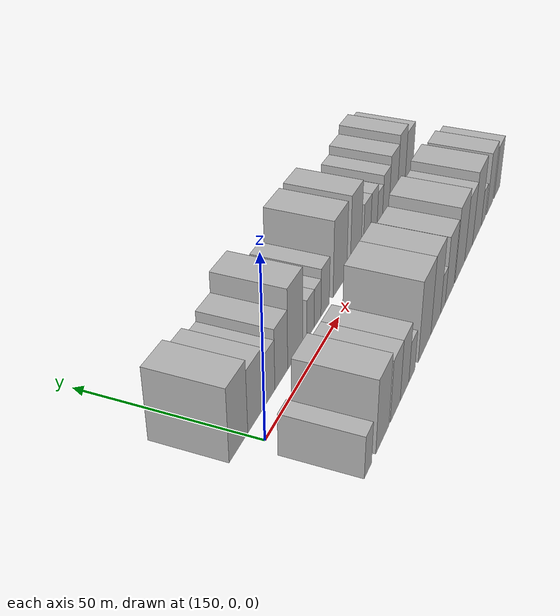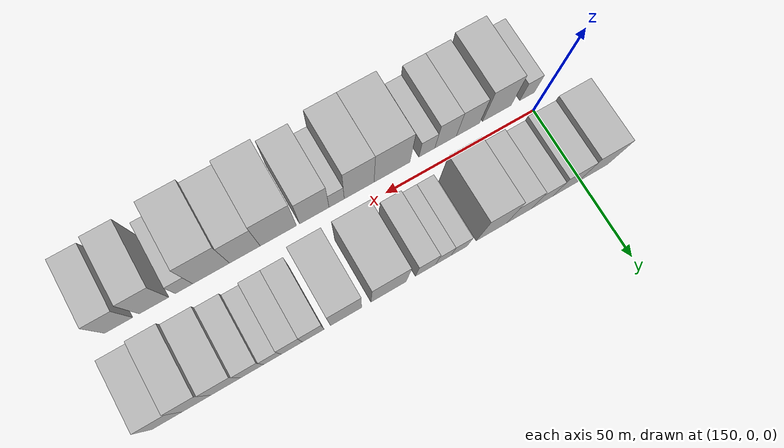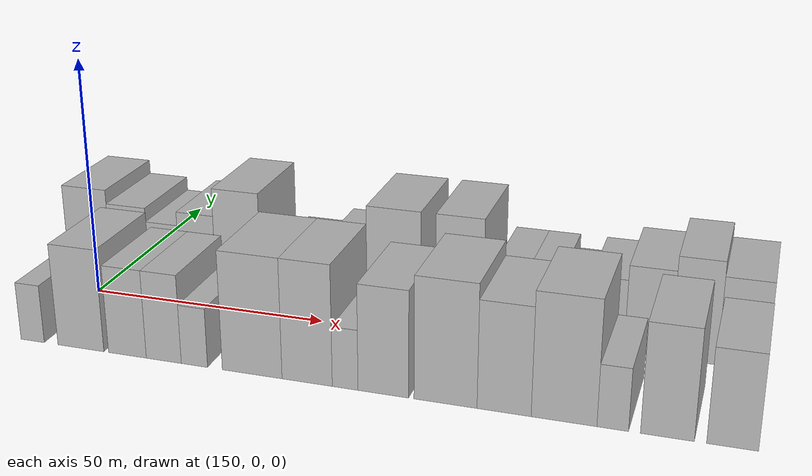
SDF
<sdf version="1.6">
 <world name="default">
  <model name="building_17">
   <static>1</static>
   <pose>145.6593 14.5000 0 0.000000 0.000000 1.570796</pose>
   <link name="link">
    <pose>0 0 10.50 0 0 0</pose>
    <collision name="collision"><geometry><box><size>20.0000 10.1548 21.0000</size></box></geometry></collision>
    <visual name="visual">
     <cast_shadows>0</cast_shadows>
     <geometry><box><size>20.0000 10.1548 21.0000</size></box></geometry>
     <material>
      <script>
       <uri>model://HANNAS_wall/materials/scripts</uri>
       <uri>model://HANNAS_wall/materials/textures</uri>
       <name>vrc/HANNAS_wall</name>
      </script>
     </material>
    </visual>
   </link>
  </model>
  <model name="building_18">
   <static>1</static>
   <pose>155.1751 14.5000 0 0.000000 0.000000 1.570796</pose>
   <link name="link">
    <pose>0 0 9.00 0 0 0</pose>
    <collision name="collision"><geometry><box><size>20.0000 8.8768 18.0000</size></box></geometry></collision>
    <visual name="visual">
     <cast_shadows>0</cast_shadows>
     <geometry><box><size>20.0000 8.8768 18.0000</size></box></geometry>
     <material>
      <script>
       <uri>model://HANNAS_wall/materials/scripts</uri>
       <uri>model://HANNAS_wall/materials/textures</uri>
       <name>vrc/HANNAS_wall</name>
      </script>
     </material>
    </visual>
   </link>
  </model>
  <model name="building_19">
   <static>1</static>
   <pose>163.1832 14.5000 0 0.000000 0.000000 1.570796</pose>
   <link name="link">
    <pose>0 0 7.50 0 0 0</pose>
    <collision name="collision"><geometry><box><size>20.0000 7.1393 15.0000</size></box></geometry></collision>
    <visual name="visual">
     <cast_shadows>0</cast_shadows>
     <geometry><box><size>20.0000 7.1393 15.0000</size></box></geometry>
     <material>
      <script>
       <uri>model://HANNAS_wall/materials/scripts</uri>
       <uri>model://HANNAS_wall/materials/textures</uri>
       <name>vrc/HANNAS_wall</name>
      </script>
     </material>
    </visual>
   </link>
  </model>
  <model name="building_20">
   <static>1</static>
   <pose>170.8533 14.5000 0 0.000000 0.000000 1.570796</pose>
   <link name="link">
    <pose>0 0 9.00 0 0 0</pose>
    <collision name="collision"><geometry><box><size>20.0000 8.2009 18.0000</size></box></geometry></collision>
    <visual name="visual">
     <cast_shadows>0</cast_shadows>
     <geometry><box><size>20.0000 8.2009 18.0000</size></box></geometry>
     <material>
      <script>
       <uri>model://HANNAS_wall/materials/scripts</uri>
       <uri>model://HANNAS_wall/materials/textures</uri>
       <name>vrc/HANNAS_wall</name>
      </script>
     </material>
    </visual>
   </link>
  </model>
  <model name="building_21">
   <static>1</static>
   <pose>180.0035 14.5000 0 0.000000 0.000000 1.570796</pose>
   <link name="link">
    <pose>0 0 12.00 0 0 0</pose>
    <collision name="collision"><geometry><box><size>20.0000 10.0996 24.0000</size></box></geometry></collision>
    <visual name="visual">
     <cast_shadows>0</cast_shadows>
     <geometry><box><size>20.0000 10.0996 24.0000</size></box></geometry>
     <material>
      <script>
       <uri>model://HANNAS_wall/materials/scripts</uri>
       <uri>model://HANNAS_wall/materials/textures</uri>
       <name>vrc/HANNAS_wall</name>
      </script>
     </material>
    </visual>
   </link>
  </model>
  <model name="building_22">
   <static>1</static>
   <pose>190.7245 14.5000 0 0.000000 0.000000 1.570796</pose>
   <link name="link">
    <pose>0 0 6.00 0 0 0</pose>
    <collision name="collision"><geometry><box><size>20.0000 5.3423 12.0000</size></box></geometry></collision>
    <visual name="visual">
     <cast_shadows>0</cast_shadows>
     <geometry><box><size>20.0000 5.3423 12.0000</size></box></geometry>
     <material>
      <script>
       <uri>model://HANNAS_wall/materials/scripts</uri>
       <uri>model://HANNAS_wall/materials/textures</uri>
       <name>vrc/HANNAS_wall</name>
      </script>
     </material>
    </visual>
   </link>
  </model>
  <model name="building_23">
   <static>1</static>
   <pose>195.9058 14.5000 0 0.000000 0.000000 1.570796</pose>
   <link name="link">
    <pose>0 0 6.00 0 0 0</pose>
    <collision name="collision"><geometry><box><size>20.0000 5.0203 12.0000</size></box></geometry></collision>
    <visual name="visual">
     <cast_shadows>0</cast_shadows>
     <geometry><box><size>20.0000 5.0203 12.0000</size></box></geometry>
     <material>
      <script>
       <uri>model://HANNAS_wall/materials/scripts</uri>
       <uri>model://HANNAS_wall/materials/textures</uri>
       <name>vrc/HANNAS_wall</name>
      </script>
     </material>
    </visual>
   </link>
  </model>
  <model name="building_24">
   <static>1</static>
   <pose>201.6565 14.5000 0 0.000000 0.000000 1.570796</pose>
   <link name="link">
    <pose>0 0 7.50 0 0 0</pose>
    <collision name="collision"><geometry><box><size>20.0000 6.4810 15.0000</size></box></geometry></collision>
    <visual name="visual">
     <cast_shadows>0</cast_shadows>
     <geometry><box><size>20.0000 6.4810 15.0000</size></box></geometry>
     <material>
      <script>
       <uri>model://HANNAS_wall/materials/scripts</uri>
       <uri>model://HANNAS_wall/materials/textures</uri>
       <name>vrc/HANNAS_wall</name>
      </script>
     </material>
    </visual>
   </link>
  </model>
  <model name="building_25">
   <static>1</static>
   <pose>213.5023 14.5000 0 0.000000 0.000000 1.570796</pose>
   <link name="link">
    <pose>0 0 12.00 0 0 0</pose>
    <collision name="collision"><geometry><box><size>20.0000 11.2107 24.0000</size></box></geometry></collision>
    <visual name="visual">
     <cast_shadows>0</cast_shadows>
     <geometry><box><size>20.0000 11.2107 24.0000</size></box></geometry>
     <material>
      <script>
       <uri>model://HANNAS_wall/materials/scripts</uri>
       <uri>model://HANNAS_wall/materials/textures</uri>
       <name>vrc/HANNAS_wall</name>
      </script>
     </material>
    </visual>
   </link>
  </model>
  <model name="building_26">
   <static>1</static>
   <pose>226.9615 14.5000 0 0.000000 0.000000 1.570796</pose>
   <link name="link">
    <pose>0 0 12.00 0 0 0</pose>
    <collision name="collision"><geometry><box><size>20.0000 9.7077 24.0000</size></box></geometry></collision>
    <visual name="visual">
     <cast_shadows>0</cast_shadows>
     <geometry><box><size>20.0000 9.7077 24.0000</size></box></geometry>
     <material>
      <script>
       <uri>model://HANNAS_wall/materials/scripts</uri>
       <uri>model://HANNAS_wall/materials/textures</uri>
       <name>vrc/HANNAS_wall</name>
      </script>
     </material>
    </visual>
   </link>
  </model>
  <model name="building_27">
   <static>1</static>
   <pose>237.1932 14.5000 0 0.000000 0.000000 1.570796</pose>
   <link name="link">
    <pose>0 0 7.50 0 0 0</pose>
    <collision name="collision"><geometry><box><size>20.0000 6.7558 15.0000</size></box></geometry></collision>
    <visual name="visual">
     <cast_shadows>0</cast_shadows>
     <geometry><box><size>20.0000 6.7558 15.0000</size></box></geometry>
     <material>
      <script>
       <uri>model://HANNAS_wall/materials/scripts</uri>
       <uri>model://HANNAS_wall/materials/textures</uri>
       <name>vrc/HANNAS_wall</name>
      </script>
     </material>
    </visual>
   </link>
  </model>
  <model name="building_28">
   <static>1</static>
   <pose>243.8081 14.5000 0 0.000000 0.000000 1.570796</pose>
   <link name="link">
    <pose>0 0 7.50 0 0 0</pose>
    <collision name="collision"><geometry><box><size>20.0000 6.4741 15.0000</size></box></geometry></collision>
    <visual name="visual">
     <cast_shadows>0</cast_shadows>
     <geometry><box><size>20.0000 6.4741 15.0000</size></box></geometry>
     <material>
      <script>
       <uri>model://HANNAS_wall/materials/scripts</uri>
       <uri>model://HANNAS_wall/materials/textures</uri>
       <name>vrc/HANNAS_wall</name>
      </script>
     </material>
    </visual>
   </link>
  </model>
  <model name="building_29">
   <static>1</static>
   <pose>249.7371 14.5000 0 0.000000 0.000000 1.570796</pose>
   <link name="link">
    <pose>0 0 6.00 0 0 0</pose>
    <collision name="collision"><geometry><box><size>20.0000 5.3839 12.0000</size></box></geometry></collision>
    <visual name="visual">
     <cast_shadows>0</cast_shadows>
     <geometry><box><size>20.0000 5.3839 12.0000</size></box></geometry>
     <material>
      <script>
       <uri>model://HANNAS_wall/materials/scripts</uri>
       <uri>model://HANNAS_wall/materials/textures</uri>
       <name>vrc/HANNAS_wall</name>
      </script>
     </material>
    </visual>
   </link>
  </model>
  <model name="building_30">
   <static>1</static>
   <pose>255.9594 14.5000 0 0.000000 0.000000 1.570796</pose>
   <link name="link">
    <pose>0 0 7.50 0 0 0</pose>
    <collision name="collision"><geometry><box><size>20.0000 7.0605 15.0000</size></box></geometry></collision>
    <visual name="visual">
     <cast_shadows>0</cast_shadows>
     <geometry><box><size>20.0000 7.0605 15.0000</size></box></geometry>
     <material>
      <script>
       <uri>model://HANNAS_wall/materials/scripts</uri>
       <uri>model://HANNAS_wall/materials/textures</uri>
       <name>vrc/HANNAS_wall</name>
      </script>
     </material>
    </visual>
   </link>
  </model>
  <model name="building_31">
   <static>1</static>
   <pose>263.9150 14.5000 0 0.000000 0.000000 1.570796</pose>
   <link name="link">
    <pose>0 0 9.00 0 0 0</pose>
    <collision name="collision"><geometry><box><size>20.0000 8.8508 18.0000</size></box></geometry></collision>
    <visual name="visual">
     <cast_shadows>0</cast_shadows>
     <geometry><box><size>20.0000 8.8508 18.0000</size></box></geometry>
     <material>
      <script>
       <uri>model://HANNAS_wall/materials/scripts</uri>
       <uri>model://HANNAS_wall/materials/textures</uri>
       <name>vrc/HANNAS_wall</name>
      </script>
     </material>
    </visual>
   </link>
  </model>
  <model name="building_32">
   <static>1</static>
   <pose>272.6241 14.5000 0 0.000000 0.000000 1.570796</pose>
   <link name="link">
    <pose>0 0 10.50 0 0 0</pose>
    <collision name="collision"><geometry><box><size>20.0000 8.5672 21.0000</size></box></geometry></collision>
    <visual name="visual">
     <cast_shadows>0</cast_shadows>
     <geometry><box><size>20.0000 8.5672 21.0000</size></box></geometry>
     <material>
      <script>
       <uri>model://HANNAS_wall/materials/scripts</uri>
       <uri>model://HANNAS_wall/materials/textures</uri>
       <name>vrc/HANNAS_wall</name>
      </script>
     </material>
    </visual>
   </link>
  </model>
  <model name="building_33">
   <static>1</static>
   <pose>281.3903 14.5000 0 0.000000 0.000000 1.570796</pose>
   <link name="link">
    <pose>0 0 9.00 0 0 0</pose>
    <collision name="collision"><geometry><box><size>20.0000 8.9652 18.0000</size></box></geometry></collision>
    <visual name="visual">
     <cast_shadows>0</cast_shadows>
     <geometry><box><size>20.0000 8.9652 18.0000</size></box></geometry>
     <material>
      <script>
       <uri>model://HANNAS_wall/materials/scripts</uri>
       <uri>model://HANNAS_wall/materials/textures</uri>
       <name>vrc/HANNAS_wall</name>
      </script>
     </material>
    </visual>
   </link>
  </model>
  <model name="building_48">
   <static>1</static>
   <pose>149.2443 -14.5000 0 0.000000 0.000000 1.570796</pose>
   <link name="link">
    <pose>0 0 6.00 0 0 0</pose>
    <collision name="collision"><geometry><box><size>20.0000 5.1128 12.0000</size></box></geometry></collision>
    <visual name="visual">
     <cast_shadows>0</cast_shadows>
     <geometry><box><size>20.0000 5.1128 12.0000</size></box></geometry>
     <material>
      <script>
       <uri>model://HANNAS_wall/materials/scripts</uri>
       <uri>model://HANNAS_wall/materials/textures</uri>
       <name>vrc/HANNAS_wall</name>
      </script>
     </material>
    </visual>
   </link>
  </model>
  <model name="building_49">
   <static>1</static>
   <pose>159.7428 -14.5000 0 0.000000 0.000000 1.570796</pose>
   <link name="link">
    <pose>0 0 10.50 0 0 0</pose>
    <collision name="collision"><geometry><box><size>20.0000 9.8843 21.0000</size></box></geometry></collision>
    <visual name="visual">
     <cast_shadows>0</cast_shadows>
     <geometry><box><size>20.0000 9.8843 21.0000</size></box></geometry>
     <material>
      <script>
       <uri>model://HANNAS_wall/materials/scripts</uri>
       <uri>model://HANNAS_wall/materials/textures</uri>
       <name>vrc/HANNAS_wall</name>
      </script>
     </material>
    </visual>
   </link>
  </model>
  <model name="building_50">
   <static>1</static>
   <pose>169.6677 -14.5000 0 0.000000 0.000000 1.570796</pose>
   <link name="link">
    <pose>0 0 9.00 0 0 0</pose>
    <collision name="collision"><geometry><box><size>20.0000 7.9654 18.0000</size></box></geometry></collision>
    <visual name="visual">
     <cast_shadows>0</cast_shadows>
     <geometry><box><size>20.0000 7.9654 18.0000</size></box></geometry>
     <material>
      <script>
       <uri>model://HANNAS_wall/materials/scripts</uri>
       <uri>model://HANNAS_wall/materials/textures</uri>
       <name>vrc/HANNAS_wall</name>
      </script>
     </material>
    </visual>
   </link>
  </model>
  <model name="building_51">
   <static>1</static>
   <pose>177.2809 -14.5000 0 0.000000 0.000000 1.570796</pose>
   <link name="link">
    <pose>0 0 9.00 0 0 0</pose>
    <collision name="collision"><geometry><box><size>20.0000 7.2611 18.0000</size></box></geometry></collision>
    <visual name="visual">
     <cast_shadows>0</cast_shadows>
     <geometry><box><size>20.0000 7.2611 18.0000</size></box></geometry>
     <material>
      <script>
       <uri>model://HANNAS_wall/materials/scripts</uri>
       <uri>model://HANNAS_wall/materials/textures</uri>
       <name>vrc/HANNAS_wall</name>
      </script>
     </material>
    </visual>
   </link>
  </model>
  <model name="building_52">
   <static>1</static>
   <pose>183.5952 -14.5000 0 0.000000 0.000000 1.570796</pose>
   <link name="link">
    <pose>0 0 6.00 0 0 0</pose>
    <collision name="collision"><geometry><box><size>20.0000 5.3674 12.0000</size></box></geometry></collision>
    <visual name="visual">
     <cast_shadows>0</cast_shadows>
     <geometry><box><size>20.0000 5.3674 12.0000</size></box></geometry>
     <material>
      <script>
       <uri>model://HANNAS_wall/materials/scripts</uri>
       <uri>model://HANNAS_wall/materials/textures</uri>
       <name>vrc/HANNAS_wall</name>
      </script>
     </material>
    </visual>
   </link>
  </model>
  <model name="building_53">
   <static>1</static>
   <pose>195.2286 -14.5000 0 0.000000 0.000000 1.570796</pose>
   <link name="link">
    <pose>0 0 12.00 0 0 0</pose>
    <collision name="collision"><geometry><box><size>20.0000 11.8994 24.0000</size></box></geometry></collision>
    <visual name="visual">
     <cast_shadows>0</cast_shadows>
     <geometry><box><size>20.0000 11.8994 24.0000</size></box></geometry>
     <material>
      <script>
       <uri>model://HANNAS_wall/materials/scripts</uri>
       <uri>model://HANNAS_wall/materials/textures</uri>
       <name>vrc/HANNAS_wall</name>
      </script>
     </material>
    </visual>
   </link>
  </model>
  <model name="building_54">
   <static>1</static>
   <pose>206.0644 -14.5000 0 0.000000 0.000000 1.570796</pose>
   <link name="link">
    <pose>0 0 12.00 0 0 0</pose>
    <collision name="collision"><geometry><box><size>20.0000 9.7721 24.0000</size></box></geometry></collision>
    <visual name="visual">
     <cast_shadows>0</cast_shadows>
     <geometry><box><size>20.0000 9.7721 24.0000</size></box></geometry>
     <material>
      <script>
       <uri>model://HANNAS_wall/materials/scripts</uri>
       <uri>model://HANNAS_wall/materials/textures</uri>
       <name>vrc/HANNAS_wall</name>
      </script>
     </material>
    </visual>
   </link>
  </model>
  <model name="building_55">
   <static>1</static>
   <pose>213.4082 -14.5000 0 0.000000 0.000000 1.570796</pose>
   <link name="link">
    <pose>0 0 6.00 0 0 0</pose>
    <collision name="collision"><geometry><box><size>20.0000 4.9154 12.0000</size></box></geometry></collision>
    <visual name="visual">
     <cast_shadows>0</cast_shadows>
     <geometry><box><size>20.0000 4.9154 12.0000</size></box></geometry>
     <material>
      <script>
       <uri>model://HANNAS_wall/materials/scripts</uri>
       <uri>model://HANNAS_wall/materials/textures</uri>
       <name>vrc/HANNAS_wall</name>
      </script>
     </material>
    </visual>
   </link>
  </model>
  <model name="building_56">
   <static>1</static>
   <pose>220.6247 -14.5000 0 0.000000 0.000000 1.570796</pose>
   <link name="link">
    <pose>0 0 10.50 0 0 0</pose>
    <collision name="collision"><geometry><box><size>20.0000 9.5177 21.0000</size></box></geometry></collision>
    <visual name="visual">
     <cast_shadows>0</cast_shadows>
     <geometry><box><size>20.0000 9.5177 21.0000</size></box></geometry>
     <material>
      <script>
       <uri>model://HANNAS_wall/materials/scripts</uri>
       <uri>model://HANNAS_wall/materials/textures</uri>
       <name>vrc/HANNAS_wall</name>
      </script>
     </material>
    </visual>
   </link>
  </model>
  <model name="building_57">
   <static>1</static>
   <pose>232.1522 -14.5000 0 0.000000 0.000000 1.570796</pose>
   <link name="link">
    <pose>0 0 12.00 0 0 0</pose>
    <collision name="collision"><geometry><box><size>20.0000 11.5373 24.0000</size></box></geometry></collision>
    <visual name="visual">
     <cast_shadows>0</cast_shadows>
     <geometry><box><size>20.0000 11.5373 24.0000</size></box></geometry>
     <material>
      <script>
       <uri>model://HANNAS_wall/materials/scripts</uri>
       <uri>model://HANNAS_wall/materials/textures</uri>
       <name>vrc/HANNAS_wall</name>
      </script>
     </material>
    </visual>
   </link>
  </model>
  <model name="building_58">
   <static>1</static>
   <pose>242.7516 -14.5000 0 0.000000 0.000000 1.570796</pose>
   <link name="link">
    <pose>0 0 10.50 0 0 0</pose>
    <collision name="collision"><geometry><box><size>20.0000 9.6615 21.0000</size></box></geometry></collision>
    <visual name="visual">
     <cast_shadows>0</cast_shadows>
     <geometry><box><size>20.0000 9.6615 21.0000</size></box></geometry>
     <material>
      <script>
       <uri>model://HANNAS_wall/materials/scripts</uri>
       <uri>model://HANNAS_wall/materials/textures</uri>
       <name>vrc/HANNAS_wall</name>
      </script>
     </material>
    </visual>
   </link>
  </model>
  <model name="building_59">
   <static>1</static>
   <pose>253.3083 -14.5000 0 0.000000 0.000000 1.570796</pose>
   <link name="link">
    <pose>0 0 12.00 0 0 0</pose>
    <collision name="collision"><geometry><box><size>20.0000 11.4520 24.0000</size></box></geometry></collision>
    <visual name="visual">
     <cast_shadows>0</cast_shadows>
     <geometry><box><size>20.0000 11.4520 24.0000</size></box></geometry>
     <material>
      <script>
       <uri>model://HANNAS_wall/materials/scripts</uri>
       <uri>model://HANNAS_wall/materials/textures</uri>
       <name>vrc/HANNAS_wall</name>
      </script>
     </material>
    </visual>
   </link>
  </model>
  <model name="building_60">
   <static>1</static>
   <pose>261.7323 -14.5000 0 0.000000 0.000000 1.570796</pose>
   <link name="link">
    <pose>0 0 6.00 0 0 0</pose>
    <collision name="collision"><geometry><box><size>20.0000 5.3960 12.0000</size></box></geometry></collision>
    <visual name="visual">
     <cast_shadows>0</cast_shadows>
     <geometry><box><size>20.0000 5.3960 12.0000</size></box></geometry>
     <material>
      <script>
       <uri>model://HANNAS_wall/materials/scripts</uri>
       <uri>model://HANNAS_wall/materials/textures</uri>
       <name>vrc/HANNAS_wall</name>
      </script>
     </material>
    </visual>
   </link>
  </model>
  <model name="building_61">
   <static>1</static>
   <pose>270.9341 -14.5000 0 0.000000 0.000000 1.570796</pose>
   <link name="link">
    <pose>0 0 10.50 0 0 0</pose>
    <collision name="collision"><geometry><box><size>20.0000 9.0076 21.0000</size></box></geometry></collision>
    <visual name="visual">
     <cast_shadows>0</cast_shadows>
     <geometry><box><size>20.0000 9.0076 21.0000</size></box></geometry>
     <material>
      <script>
       <uri>model://HANNAS_wall/materials/scripts</uri>
       <uri>model://HANNAS_wall/materials/textures</uri>
       <name>vrc/HANNAS_wall</name>
      </script>
     </material>
    </visual>
   </link>
  </model>
  <model name="building_62">
   <static>1</static>
   <pose>281.6700 -14.5000 0 0.000000 0.000000 1.570796</pose>
   <link name="link">
    <pose>0 0 9.00 0 0 0</pose>
    <collision name="collision"><geometry><box><size>20.0000 8.4642 18.0000</size></box></geometry></collision>
    <visual name="visual">
     <cast_shadows>0</cast_shadows>
     <geometry><box><size>20.0000 8.4642 18.0000</size></box></geometry>
     <material>
      <script>
       <uri>model://HANNAS_wall/materials/scripts</uri>
       <uri>model://HANNAS_wall/materials/textures</uri>
       <name>vrc/HANNAS_wall</name>
      </script>
     </material>
    </visual>
   </link>
  </model>
 </world>
</sdf>
